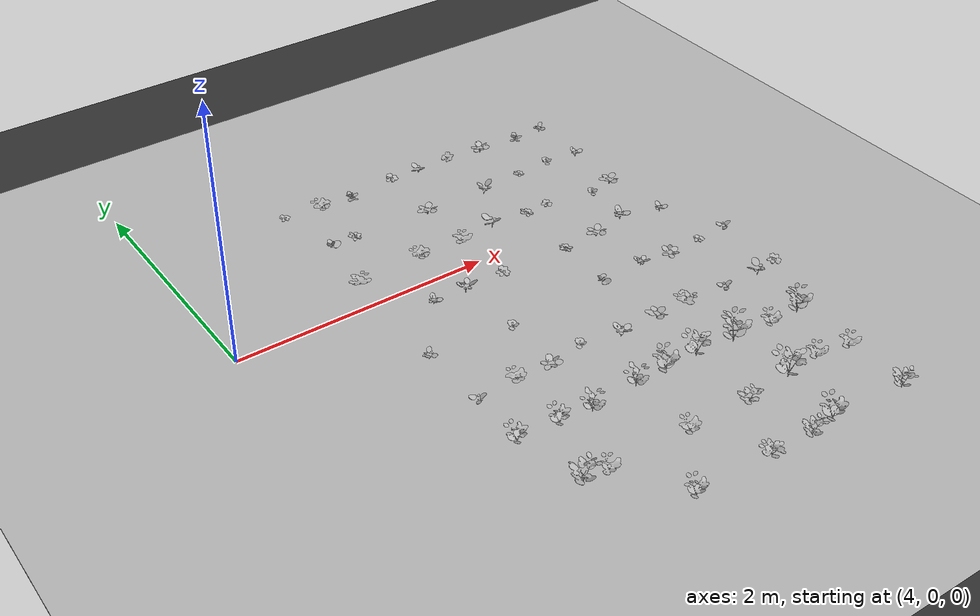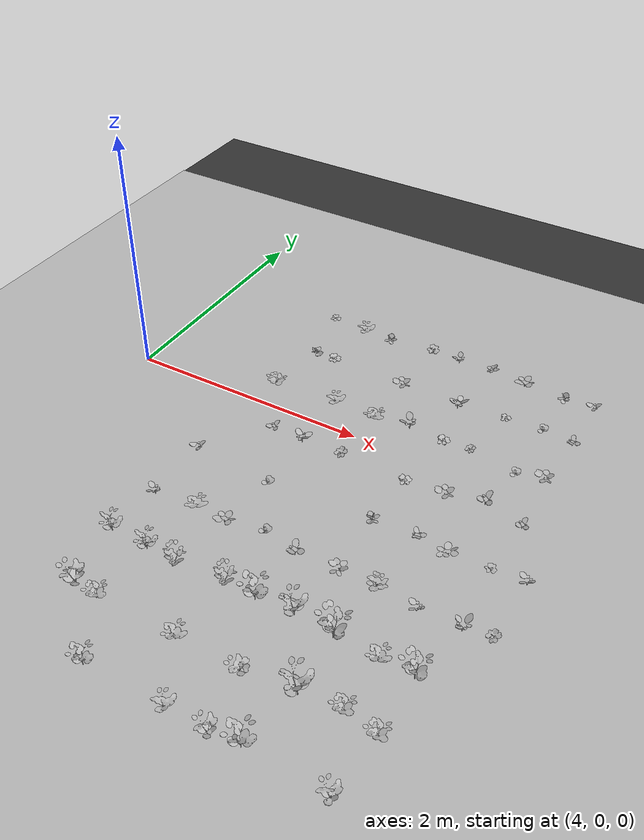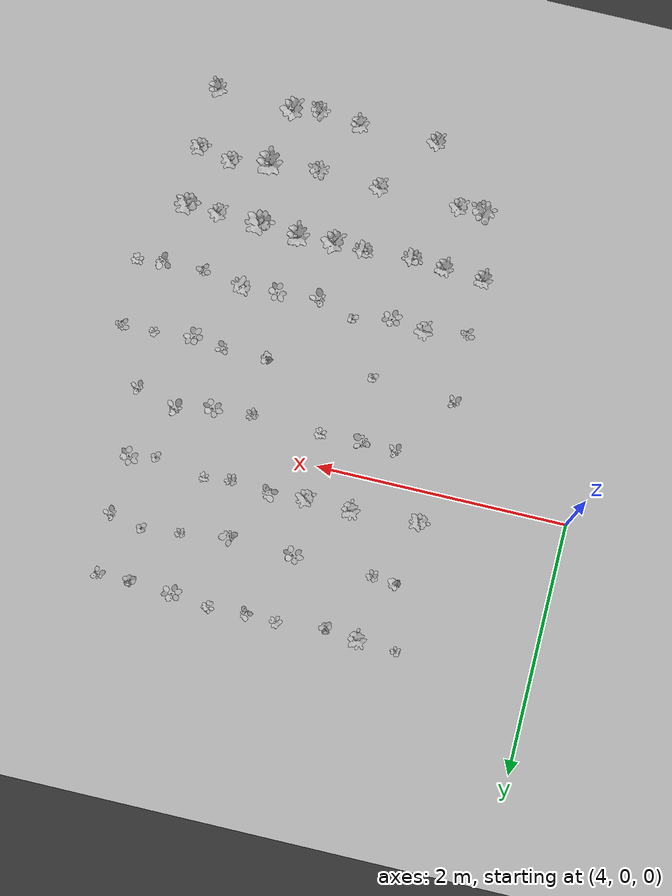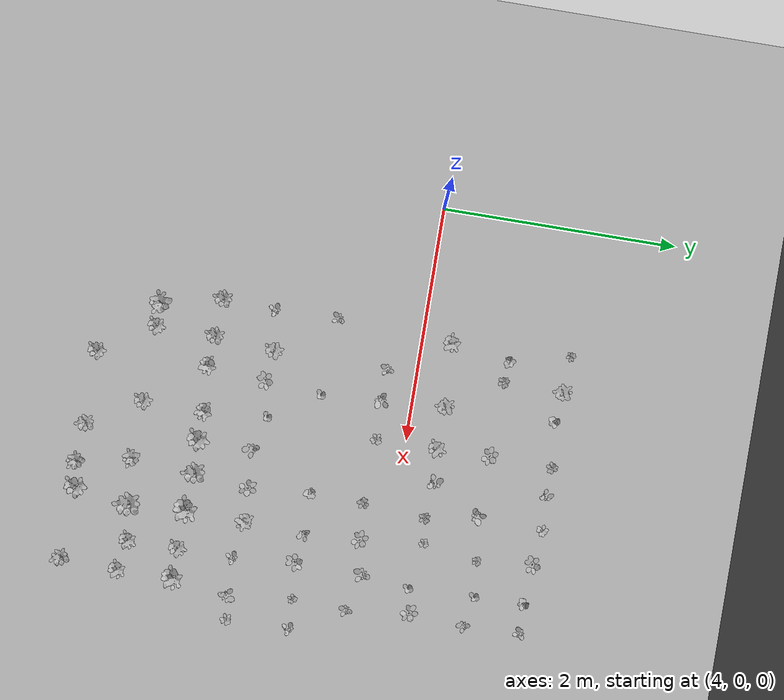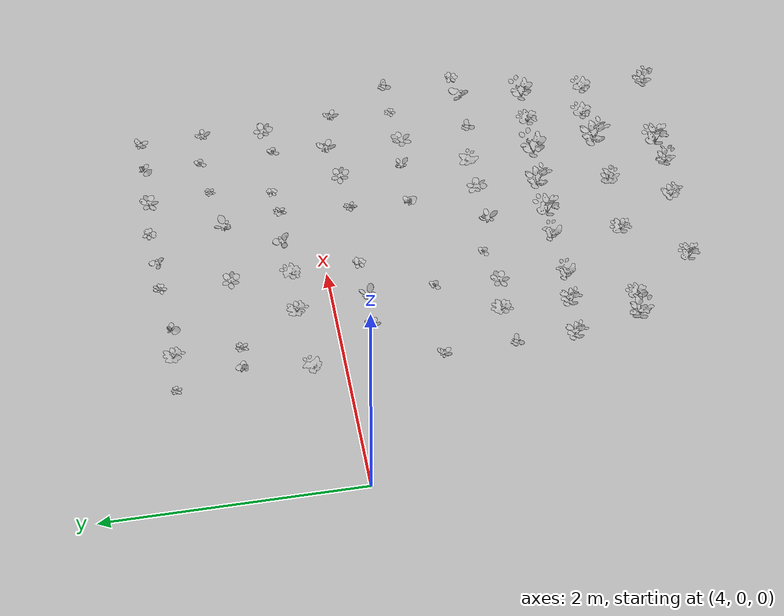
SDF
<sdf version="1.7">
 <world name="default">
  <model name="ground_plane">
   <static>1</static>
   <link name="link">
    <collision name="collision">
     <geometry><plane><normal>0 0 1</normal><size>100 100</size></plane></geometry>
     <surface>
      <contact><collide_bitmask>65535</collide_bitmask></contact>
      <friction><ode><mu>100</mu><mu2>50</mu2></ode></friction>
     </surface>
    </collision>
    <visual name="visual">
     <cast_shadows>0</cast_shadows>
     <geometry><plane><normal>0 0 1</normal><size>100 100</size></plane></geometry>
     <material>
      <ambient>0.2 0.2 0.2 1.0</ambient>
      <diffuse>0.2 0.2 0.2 1.0</diffuse>
      <specular>0.2 0.2 0.2 1.0</specular>
      <emissive>0.2 0.2 0.2 1.0</emissive>
     </material>
    </visual>
   </link>
  </model>
  <model name="ground">
   <pose>5 -0.5 0.01  3.141592654 0 0</pose>
   <static>true</static>
   <link name="body">
    <visual name="visual">
     <cast_shadows>0</cast_shadows>
     <geometry>
      <mesh><uri>file:///home/ifcosta/catkin_ws/src/cnn_line/worlds/models/ground.obj</uri></mesh>
     </geometry>
    </visual>
   </link>
  </model>
  <model name="plt_17">
   <pose>5.09 -1.28 0.0143 0.0 0.0 -0.75219</pose>
   <static>true</static>
   <link name="body">
    <visual name="visual">
     <geometry>
      <mesh><uri>file:///home/ifcosta/catkin_ws/src/cnn_line/worlds/models/plant1.obj</uri></mesh>
     </geometry>
    </visual>
   </link>
  </model>
  <model name="plt_18">
   <pose>5.43 -1.24 0.0139 0.0 0.0 0.06974</pose>
   <static>true</static>
   <link name="body">
    <visual name="visual">
     <geometry>
      <mesh><uri>file:///home/ifcosta/catkin_ws/src/cnn_line/worlds/models/plant0.obj</uri></mesh>
     </geometry>
    </visual>
   </link>
  </model>
  <model name="plt_19">
   <pose>5.7 -1.26 0.0103 0.0 0.0 0.90144</pose>
   <static>true</static>
   <link name="body">
    <visual name="visual">
     <geometry>
      <mesh><uri>file:///home/ifcosta/catkin_ws/src/cnn_line/worlds/models/plant2.obj</uri></mesh>
     </geometry>
    </visual>
   </link>
  </model>
  <model name="plt_20">
   <pose>5.99 -1.2 0.0155 0.0 0.0 0.1638</pose>
   <static>true</static>
   <link name="body">
    <visual name="visual">
     <geometry>
      <mesh><uri>file:///home/ifcosta/catkin_ws/src/cnn_line/worlds/models/plant6.obj</uri></mesh>
     </geometry>
    </visual>
   </link>
  </model>
  <model name="plt_21">
   <pose>6.31 -1.28 0.0148 0.0 0.0 -1.6709</pose>
   <static>true</static>
   <link name="body">
    <visual name="visual">
     <geometry>
      <mesh><uri>file:///home/ifcosta/catkin_ws/src/cnn_line/worlds/models/plant3.obj</uri></mesh>
     </geometry>
    </visual>
   </link>
  </model>
  <model name="plt_22">
   <pose>6.63 -1.27 0.0137 0.0 0.0 -0.39329</pose>
   <static>true</static>
   <link name="body">
    <visual name="visual">
     <geometry>
      <mesh><uri>file:///home/ifcosta/catkin_ws/src/cnn_line/worlds/models/plant2.obj</uri></mesh>
     </geometry>
    </visual>
   </link>
  </model>
  <model name="plt_23">
   <pose>6.9 -1.25 0.0141 0.0 0.0 -1.9049</pose>
   <static>true</static>
   <link name="body">
    <visual name="visual">
     <geometry>
      <mesh><uri>file:///home/ifcosta/catkin_ws/src/cnn_line/worlds/models/plant0.obj</uri></mesh>
     </geometry>
    </visual>
   </link>
  </model>
  <model name="plt_24">
   <pose>7.23 -1.3 0.0149 0.0 0.0 -0.65293</pose>
   <static>true</static>
   <link name="body">
    <visual name="visual">
     <geometry>
      <mesh><uri>file:///home/ifcosta/catkin_ws/src/cnn_line/worlds/models/plant1.obj</uri></mesh>
     </geometry>
    </visual>
   </link>
  </model>
  <model name="plt_25">
   <pose>7.53 -1.29 0.0139 0.0 0.0 0.92249</pose>
   <static>true</static>
   <link name="body">
    <visual name="visual">
     <geometry>
      <mesh><uri>file:///home/ifcosta/catkin_ws/src/cnn_line/worlds/models/plant3.obj</uri></mesh>
     </geometry>
    </visual>
   </link>
  </model>
  <model name="plt_26">
   <pose>7.75 -1.27 0.0156 0.0 0.0 -1.7883</pose>
   <static>true</static>
   <link name="body">
    <visual name="visual">
     <geometry>
      <mesh><uri>file:///home/ifcosta/catkin_ws/src/cnn_line/worlds/models/plant5.obj</uri></mesh>
     </geometry>
    </visual>
   </link>
  </model>
  <model name="plt_51">
   <pose>5.07 -0.731 0.0158 0.0 0.0 0.39924</pose>
   <static>true</static>
   <link name="body">
    <visual name="visual">
     <geometry>
      <mesh><uri>file:///home/ifcosta/catkin_ws/src/cnn_line/worlds/models/plant1.obj</uri></mesh>
     </geometry>
    </visual>
   </link>
  </model>
  <model name="plt_53">
   <pose>5.73 -0.779 0.0159 0.0 0.0 0.2545</pose>
   <static>true</static>
   <link name="body">
    <visual name="visual">
     <geometry>
      <mesh><uri>file:///home/ifcosta/catkin_ws/src/cnn_line/worlds/models/plant6.obj</uri></mesh>
     </geometry>
    </visual>
   </link>
  </model>
  <model name="plt_56">
   <pose>6.57 -0.73 0.0154 0.0 0.0 0.71574</pose>
   <static>true</static>
   <link name="body">
    <visual name="visual">
     <geometry>
      <mesh><uri>file:///home/ifcosta/catkin_ws/src/cnn_line/worlds/models/plant7.obj</uri></mesh>
     </geometry>
    </visual>
   </link>
  </model>
  <model name="plt_57">
   <pose>6.93 -0.73 0.0172 0.0 0.0 1.7421</pose>
   <static>true</static>
   <link name="body">
    <visual name="visual">
     <geometry>
      <mesh><uri>file:///home/ifcosta/catkin_ws/src/cnn_line/worlds/models/plant1.obj</uri></mesh>
     </geometry>
    </visual>
   </link>
  </model>
  <model name="plt_58">
   <pose>7.18 -0.76 0.0165 0.0 0.0 1.5056</pose>
   <static>true</static>
   <link name="body">
    <visual name="visual">
     <geometry>
      <mesh><uri>file:///home/ifcosta/catkin_ws/src/cnn_line/worlds/models/plant2.obj</uri></mesh>
     </geometry>
    </visual>
   </link>
  </model>
  <model name="plt_59">
   <pose>7.49 -0.741 0.0131 0.0 0.0 -0.93482</pose>
   <static>true</static>
   <link name="body">
    <visual name="visual">
     <geometry>
      <mesh><uri>file:///home/ifcosta/catkin_ws/src/cnn_line/worlds/models/plant4.obj</uri></mesh>
     </geometry>
    </visual>
   </link>
  </model>
  <model name="plt_60">
   <pose>7.75 -0.732 0.013 0.0 0.0 -0.72656</pose>
   <static>true</static>
   <link name="body">
    <visual name="visual">
     <geometry>
      <mesh><uri>file:///home/ifcosta/catkin_ws/src/cnn_line/worlds/models/plant1.obj</uri></mesh>
     </geometry>
    </visual>
   </link>
  </model>
  <model name="plt_86">
   <pose>5.43 -0.251 0.0145 0.0 0.0 0.72852</pose>
   <static>true</static>
   <link name="body">
    <visual name="visual">
     <geometry>
      <mesh><uri>file:///home/ifcosta/catkin_ws/src/cnn_line/worlds/models/plant1.obj</uri></mesh>
     </geometry>
    </visual>
   </link>
  </model>
  <model name="plt_87">
   <pose>5.71 -0.242 0.0154 0.0 0.0 -0.80506</pose>
   <static>true</static>
   <link name="body">
    <visual name="visual">
     <geometry>
      <mesh><uri>file:///home/ifcosta/catkin_ws/src/cnn_line/worlds/models/plant3.obj</uri></mesh>
     </geometry>
    </visual>
   </link>
  </model>
  <model name="plt_88">
   <pose>6.03 -0.254 0.0131 0.0 0.0 -1.6552</pose>
   <static>true</static>
   <link name="body">
    <visual name="visual">
     <geometry>
      <mesh><uri>file:///home/ifcosta/catkin_ws/src/cnn_line/worlds/models/plant5.obj</uri></mesh>
     </geometry>
    </visual>
   </link>
  </model>
  <model name="plt_90">
   <pose>6.59 -0.279 0.0144 0.0 0.0 0.39903</pose>
   <static>true</static>
   <link name="body">
    <visual name="visual">
     <geometry>
      <mesh><uri>file:///home/ifcosta/catkin_ws/src/cnn_line/worlds/models/plant5.obj</uri></mesh>
     </geometry>
    </visual>
   </link>
  </model>
  <model name="plt_91">
   <pose>6.91 -0.25 0.0156 0.0 0.0 0.30181</pose>
   <static>true</static>
   <link name="body">
    <visual name="visual">
     <geometry>
      <mesh><uri>file:///home/ifcosta/catkin_ws/src/cnn_line/worlds/models/plant2.obj</uri></mesh>
     </geometry>
    </visual>
   </link>
  </model>
  <model name="plt_92">
   <pose>7.21 -0.194 0.0153 0.0 0.0 -2.2858</pose>
   <static>true</static>
   <link name="body">
    <visual name="visual">
     <geometry>
      <mesh><uri>file:///home/ifcosta/catkin_ws/src/cnn_line/worlds/models/plant3.obj</uri></mesh>
     </geometry>
    </visual>
   </link>
  </model>
  <model name="plt_93">
   <pose>7.51 -0.272 0.0173 0.0 0.0 0.86005</pose>
   <static>true</static>
   <link name="body">
    <visual name="visual">
     <geometry>
      <mesh><uri>file:///home/ifcosta/catkin_ws/src/cnn_line/worlds/models/plant1.obj</uri></mesh>
     </geometry>
    </visual>
   </link>
  </model>
  <model name="plt_119">
   <pose>5.12 0.243 0.0183 0.0 0.0 -0.98821</pose>
   <static>true</static>
   <link name="body">
    <visual name="visual">
     <geometry>
      <mesh><uri>file:///home/ifcosta/catkin_ws/src/cnn_line/worlds/models/plant0.obj</uri></mesh>
     </geometry>
    </visual>
   </link>
  </model>
  <model name="plt_121">
   <pose>5.67 0.278 0.0171 0.0 0.0 0.57645</pose>
   <static>true</static>
   <link name="body">
    <visual name="visual">
     <geometry>
      <mesh><uri>file:///home/ifcosta/catkin_ws/src/cnn_line/worlds/models/plant0.obj</uri></mesh>
     </geometry>
    </visual>
   </link>
  </model>
  <model name="plt_10121">
   <pose>5.67 -2.72 0.0171 0.0 0.0 -0.1283</pose>
   <static>true</static>
   <link name="body">
    <visual name="visual">
     <geometry>
      <mesh><uri>file:///home/ifcosta/catkin_ws/src/cnn_line/worlds/models/plant11.obj</uri></mesh>
     </geometry>
    </visual>
   </link>
  </model>
  <model name="plt_122">
   <pose>6.03 0.261 0.0143 0.0 0.0 -0.44075</pose>
   <static>true</static>
   <link name="body">
    <visual name="visual">
     <geometry>
      <mesh><uri>file:///home/ifcosta/catkin_ws/src/cnn_line/worlds/models/plant0.obj</uri></mesh>
     </geometry>
    </visual>
   </link>
  </model>
  <model name="plt_123">
   <pose>6.3 0.282 0.0143 0.0 0.0 1.8036</pose>
   <static>true</static>
   <link name="body">
    <visual name="visual">
     <geometry>
      <mesh><uri>file:///home/ifcosta/catkin_ws/src/cnn_line/worlds/models/plant3.obj</uri></mesh>
     </geometry>
    </visual>
   </link>
  </model>
  <model name="plt_10123">
   <pose>6.3 -2.72 0.0143 0.0 0.0 0.77234</pose>
   <static>true</static>
   <link name="body">
    <visual name="visual">
     <geometry>
      <mesh><uri>file:///home/ifcosta/catkin_ws/src/cnn_line/worlds/models/plant10.obj</uri></mesh>
     </geometry>
    </visual>
   </link>
  </model>
  <model name="plt_124">
   <pose>6.63 0.259 0.0152 0.0 0.0 0.040681</pose>
   <static>true</static>
   <link name="body">
    <visual name="visual">
     <geometry>
      <mesh><uri>file:///home/ifcosta/catkin_ws/src/cnn_line/worlds/models/plant5.obj</uri></mesh>
     </geometry>
    </visual>
   </link>
  </model>
  <model name="plt_10124">
   <pose>6.63 -2.74 0.0152 0.0 0.0 1.4995</pose>
   <static>true</static>
   <link name="body">
    <visual name="visual">
     <geometry>
      <mesh><uri>file:///home/ifcosta/catkin_ws/src/cnn_line/worlds/models/plant11.obj</uri></mesh>
     </geometry>
    </visual>
   </link>
  </model>
  <model name="plt_125">
   <pose>6.84 0.289 0.0144 0.0 0.0 -1.5734</pose>
   <static>true</static>
   <link name="body">
    <visual name="visual">
     <geometry>
      <mesh><uri>file:///home/ifcosta/catkin_ws/src/cnn_line/worlds/models/plant4.obj</uri></mesh>
     </geometry>
    </visual>
   </link>
  </model>
  <model name="plt_10125">
   <pose>6.84 -2.71 0.0144 0.0 0.0 -0.14465</pose>
   <static>true</static>
   <link name="body">
    <visual name="visual">
     <geometry>
      <mesh><uri>file:///home/ifcosta/catkin_ws/src/cnn_line/worlds/models/plant12.obj</uri></mesh>
     </geometry>
    </visual>
   </link>
  </model>
  <model name="plt_126">
   <pose>7.24 0.219 0.0148 0.0 0.0 0.63992</pose>
   <static>true</static>
   <link name="body">
    <visual name="visual">
     <geometry>
      <mesh><uri>file:///home/ifcosta/catkin_ws/src/cnn_line/worlds/models/plant6.obj</uri></mesh>
     </geometry>
    </visual>
   </link>
  </model>
  <model name="plt_127">
   <pose>7.46 0.262 0.0118 0.0 0.0 -0.040305</pose>
   <static>true</static>
   <link name="body">
    <visual name="visual">
     <geometry>
      <mesh><uri>file:///home/ifcosta/catkin_ws/src/cnn_line/worlds/models/plant2.obj</uri></mesh>
     </geometry>
    </visual>
   </link>
  </model>
  <model name="plt_10127">
   <pose>7.46 -2.74 0.0118 0.0 0.0 1.0626</pose>
   <static>true</static>
   <link name="body">
    <visual name="visual">
     <geometry>
      <mesh><uri>file:///home/ifcosta/catkin_ws/src/cnn_line/worlds/models/plant11.obj</uri></mesh>
     </geometry>
    </visual>
   </link>
  </model>
  <model name="plt_153">
   <pose>5.19 0.758 0.0147 0.0 0.0 1.6056</pose>
   <static>true</static>
   <link name="body">
    <visual name="visual">
     <geometry>
      <mesh><uri>file:///home/ifcosta/catkin_ws/src/cnn_line/worlds/models/plant7.obj</uri></mesh>
     </geometry>
    </visual>
   </link>
  </model>
  <model name="plt_10153">
   <pose>5.19 -2.24 0.0147 0.0 0.0 1.6836</pose>
   <static>true</static>
   <link name="body">
    <visual name="visual">
     <geometry>
      <mesh><uri>file:///home/ifcosta/catkin_ws/src/cnn_line/worlds/models/plant12.obj</uri></mesh>
     </geometry>
    </visual>
   </link>
  </model>
  <model name="plt_154">
   <pose>5.38 0.737 0.0161 0.0 0.0 -0.13977</pose>
   <static>true</static>
   <link name="body">
    <visual name="visual">
     <geometry>
      <mesh><uri>file:///home/ifcosta/catkin_ws/src/cnn_line/worlds/models/plant5.obj</uri></mesh>
     </geometry>
    </visual>
   </link>
  </model>
  <model name="plt_10154">
   <pose>5.38 -2.26 0.0161 0.0 0.0 -0.3196</pose>
   <static>true</static>
   <link name="body">
    <visual name="visual">
     <geometry>
      <mesh><uri>file:///home/ifcosta/catkin_ws/src/cnn_line/worlds/models/plant10.obj</uri></mesh>
     </geometry>
    </visual>
   </link>
  </model>
  <model name="plt_156">
   <pose>6.03 0.728 0.0135 0.0 0.0 0.35671</pose>
   <static>true</static>
   <link name="body">
    <visual name="visual">
     <geometry>
      <mesh><uri>file:///home/ifcosta/catkin_ws/src/cnn_line/worlds/models/plant2.obj</uri></mesh>
     </geometry>
    </visual>
   </link>
  </model>
  <model name="plt_10156">
   <pose>6.03 -2.27 0.0135 0.0 0.0 0.0093521</pose>
   <static>true</static>
   <link name="body">
    <visual name="visual">
     <geometry>
      <mesh><uri>file:///home/ifcosta/catkin_ws/src/cnn_line/worlds/models/plant10.obj</uri></mesh>
     </geometry>
    </visual>
   </link>
  </model>
  <model name="plt_158">
   <pose>6.53 0.722 0.0191 0.0 0.0 0.017216</pose>
   <static>true</static>
   <link name="body">
    <visual name="visual">
     <geometry>
      <mesh><uri>file:///home/ifcosta/catkin_ws/src/cnn_line/worlds/models/plant3.obj</uri></mesh>
     </geometry>
    </visual>
   </link>
  </model>
  <model name="plt_10158">
   <pose>6.53 -2.28 0.0191 0.0 0.0 1.8557</pose>
   <static>true</static>
   <link name="body">
    <visual name="visual">
     <geometry>
      <mesh><uri>file:///home/ifcosta/catkin_ws/src/cnn_line/worlds/models/plant10.obj</uri></mesh>
     </geometry>
    </visual>
   </link>
  </model>
  <model name="plt_159">
   <pose>6.92 0.756 0.0172 0.0 0.0 0.028911</pose>
   <static>true</static>
   <link name="body">
    <visual name="visual">
     <geometry>
      <mesh><uri>file:///home/ifcosta/catkin_ws/src/cnn_line/worlds/models/plant4.obj</uri></mesh>
     </geometry>
    </visual>
   </link>
  </model>
  <model name="plt_10159">
   <pose>6.92 -2.24 0.0172 0.0 0.0 0.62965</pose>
   <static>true</static>
   <link name="body">
    <visual name="visual">
     <geometry>
      <mesh><uri>file:///home/ifcosta/catkin_ws/src/cnn_line/worlds/models/plant13.obj</uri></mesh>
     </geometry>
    </visual>
   </link>
  </model>
  <model name="plt_160">
   <pose>7.22 0.788 0.012 0.0 0.0 0.59989</pose>
   <static>true</static>
   <link name="body">
    <visual name="visual">
     <geometry>
      <mesh><uri>file:///home/ifcosta/catkin_ws/src/cnn_line/worlds/models/plant6.obj</uri></mesh>
     </geometry>
    </visual>
   </link>
  </model>
  <model name="plt_10160">
   <pose>7.22 -2.21 0.012 0.0 0.0 -0.60896</pose>
   <static>true</static>
   <link name="body">
    <visual name="visual">
     <geometry>
      <mesh><uri>file:///home/ifcosta/catkin_ws/src/cnn_line/worlds/models/plant10.obj</uri></mesh>
     </geometry>
    </visual>
   </link>
  </model>
  <model name="plt_161">
   <pose>7.48 0.737 0.013 0.0 0.0 1.2183</pose>
   <static>true</static>
   <link name="body">
    <visual name="visual">
     <geometry>
      <mesh><uri>file:///home/ifcosta/catkin_ws/src/cnn_line/worlds/models/plant1.obj</uri></mesh>
     </geometry>
    </visual>
   </link>
  </model>
  <model name="plt_10161">
   <pose>7.48 -2.26 0.013 0.0 0.0 -0.72155</pose>
   <static>true</static>
   <link name="body">
    <visual name="visual">
     <geometry>
      <mesh><uri>file:///home/ifcosta/catkin_ws/src/cnn_line/worlds/models/plant10.obj</uri></mesh>
     </geometry>
    </visual>
   </link>
  </model>
  <model name="plt_187">
   <pose>5.07 1.27 0.0161 0.0 0.0 -0.40124</pose>
   <static>true</static>
   <link name="body">
    <visual name="visual">
     <geometry>
      <mesh><uri>file:///home/ifcosta/catkin_ws/src/cnn_line/worlds/models/plant4.obj</uri></mesh>
     </geometry>
    </visual>
   </link>
  </model>
  <model name="plt_10187">
   <pose>5.07 -1.73 0.0161 0.0 0.0 0.37793</pose>
   <static>true</static>
   <link name="body">
    <visual name="visual">
     <geometry>
      <mesh><uri>file:///home/ifcosta/catkin_ws/src/cnn_line/worlds/models/plant11.obj</uri></mesh>
     </geometry>
    </visual>
   </link>
  </model>
  <model name="plt_188">
   <pose>5.39 1.25 0.0161 0.0 0.0 0.60209</pose>
   <static>true</static>
   <link name="body">
    <visual name="visual">
     <geometry>
      <mesh><uri>file:///home/ifcosta/catkin_ws/src/cnn_line/worlds/models/plant0.obj</uri></mesh>
     </geometry>
    </visual>
   </link>
  </model>
  <model name="plt_10188">
   <pose>5.39 -1.75 0.0161 0.0 0.0 0.28559</pose>
   <static>true</static>
   <link name="body">
    <visual name="visual">
     <geometry>
      <mesh><uri>file:///home/ifcosta/catkin_ws/src/cnn_line/worlds/models/plant11.obj</uri></mesh>
     </geometry>
    </visual>
   </link>
  </model>
  <model name="plt_189">
   <pose>5.64 1.23 0.0178 0.0 0.0 -0.052875</pose>
   <static>true</static>
   <link name="body">
    <visual name="visual">
     <geometry>
      <mesh><uri>file:///home/ifcosta/catkin_ws/src/cnn_line/worlds/models/plant7.obj</uri></mesh>
     </geometry>
    </visual>
   </link>
  </model>
  <model name="plt_10189">
   <pose>5.64 -1.77 0.0178 0.0 0.0 -1.4034</pose>
   <static>true</static>
   <link name="body">
    <visual name="visual">
     <geometry>
      <mesh><uri>file:///home/ifcosta/catkin_ws/src/cnn_line/worlds/models/plant11.obj</uri></mesh>
     </geometry>
    </visual>
   </link>
  </model>
  <model name="plt_190">
   <pose>6.03 1.26 0.0179 0.0 0.0 -0.87011</pose>
   <static>true</static>
   <link name="body">
    <visual name="visual">
     <geometry>
      <mesh><uri>file:///home/ifcosta/catkin_ws/src/cnn_line/worlds/models/plant5.obj</uri></mesh>
     </geometry>
    </visual>
   </link>
  </model>
  <model name="plt_10190">
   <pose>6.03 -1.74 0.0179 0.0 0.0 -1.4975</pose>
   <static>true</static>
   <link name="body">
    <visual name="visual">
     <geometry>
      <mesh><uri>file:///home/ifcosta/catkin_ws/src/cnn_line/worlds/models/plant11.obj</uri></mesh>
     </geometry>
    </visual>
   </link>
  </model>
  <model name="plt_191">
   <pose>6.28 1.25 0.0162 0.0 0.0 -1.6662</pose>
   <static>true</static>
   <link name="body">
    <visual name="visual">
     <geometry>
      <mesh><uri>file:///home/ifcosta/catkin_ws/src/cnn_line/worlds/models/plant1.obj</uri></mesh>
     </geometry>
    </visual>
   </link>
  </model>
  <model name="plt_10191">
   <pose>6.28 -1.75 0.0162 0.0 0.0 -0.31853</pose>
   <static>true</static>
   <link name="body">
    <visual name="visual">
     <geometry>
      <mesh><uri>file:///home/ifcosta/catkin_ws/src/cnn_line/worlds/models/plant12.obj</uri></mesh>
     </geometry>
    </visual>
   </link>
  </model>
  <model name="plt_192">
   <pose>6.57 1.27 0.0154 0.0 0.0 -2.4215</pose>
   <static>true</static>
   <link name="body">
    <visual name="visual">
     <geometry>
      <mesh><uri>file:///home/ifcosta/catkin_ws/src/cnn_line/worlds/models/plant5.obj</uri></mesh>
     </geometry>
    </visual>
   </link>
  </model>
  <model name="plt_10192">
   <pose>6.57 -1.73 0.0154 0.0 0.0 0.65766</pose>
   <static>true</static>
   <link name="body">
    <visual name="visual">
     <geometry>
      <mesh><uri>file:///home/ifcosta/catkin_ws/src/cnn_line/worlds/models/plant12.obj</uri></mesh>
     </geometry>
    </visual>
   </link>
  </model>
  <model name="plt_193">
   <pose>6.88 1.24 0.0156 0.0 0.0 0.8928</pose>
   <static>true</static>
   <link name="body">
    <visual name="visual">
     <geometry>
      <mesh><uri>file:///home/ifcosta/catkin_ws/src/cnn_line/worlds/models/plant2.obj</uri></mesh>
     </geometry>
    </visual>
   </link>
  </model>
  <model name="plt_10193">
   <pose>6.88 -1.76 0.0156 0.0 0.0 -0.8721</pose>
   <static>true</static>
   <link name="body">
    <visual name="visual">
     <geometry>
      <mesh><uri>file:///home/ifcosta/catkin_ws/src/cnn_line/worlds/models/plant13.obj</uri></mesh>
     </geometry>
    </visual>
   </link>
  </model>
  <model name="plt_194">
   <pose>7.22 1.22 0.0151 0.0 0.0 -0.5</pose>
   <static>true</static>
   <link name="body">
    <visual name="visual">
     <geometry>
      <mesh><uri>file:///home/ifcosta/catkin_ws/src/cnn_line/worlds/models/plant7.obj</uri></mesh>
     </geometry>
    </visual>
   </link>
  </model>
  <model name="plt_10194">
   <pose>7.22 -1.78 0.0151 0.0 0.0 -0.23655</pose>
   <static>true</static>
   <link name="body">
    <visual name="visual">
     <geometry>
      <mesh><uri>file:///home/ifcosta/catkin_ws/src/cnn_line/worlds/models/plant10.obj</uri></mesh>
     </geometry>
    </visual>
   </link>
  </model>
  <model name="plt_195">
   <pose>7.47 1.22 0.0141 0.0 0.0 0.081939</pose>
   <static>true</static>
   <link name="body">
    <visual name="visual">
     <geometry>
      <mesh><uri>file:///home/ifcosta/catkin_ws/src/cnn_line/worlds/models/plant1.obj</uri></mesh>
     </geometry>
    </visual>
   </link>
  </model>
  <model name="plt_10195">
   <pose>7.47 -1.78 0.0141 0.0 0.0 -0.80821</pose>
   <static>true</static>
   <link name="body">
    <visual name="visual">
     <geometry>
      <mesh><uri>file:///home/ifcosta/catkin_ws/src/cnn_line/worlds/models/plant12.obj</uri></mesh>
     </geometry>
    </visual>
   </link>
  </model>
 </world>
</sdf>
